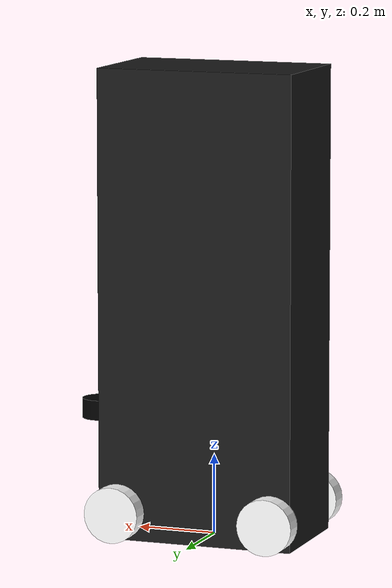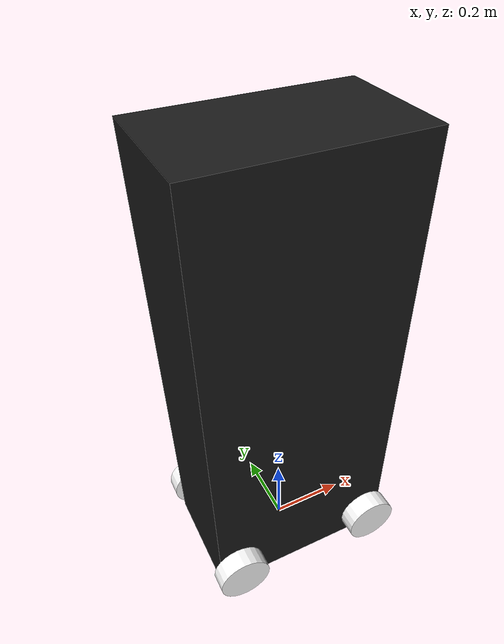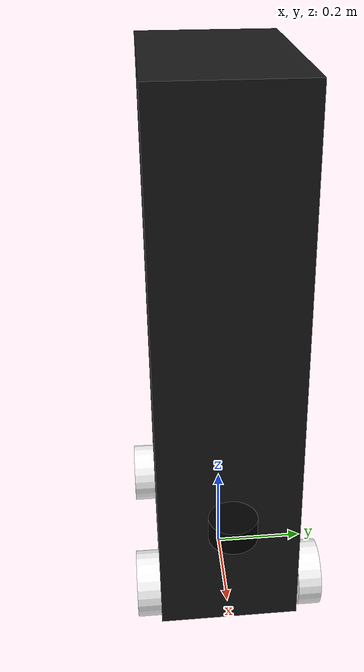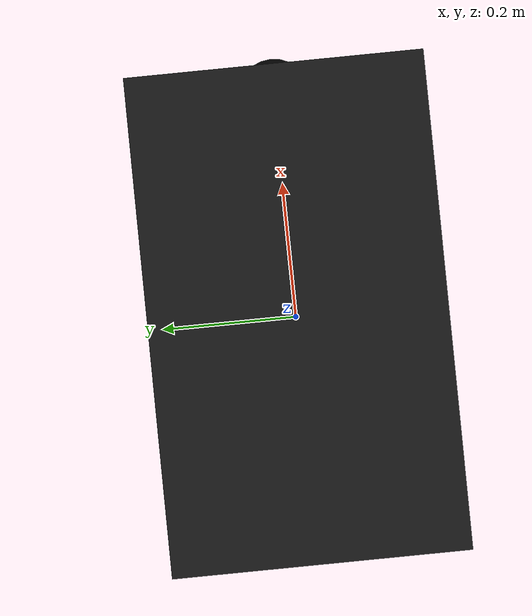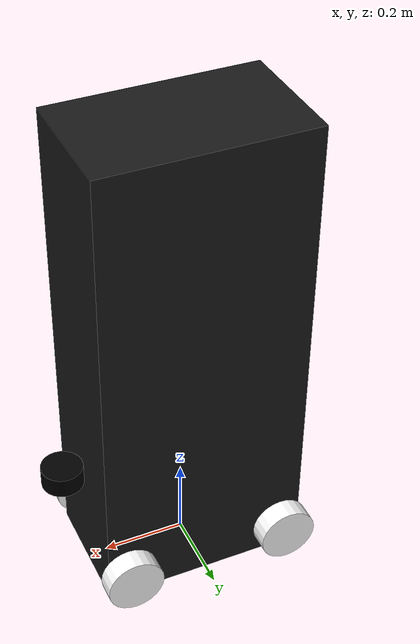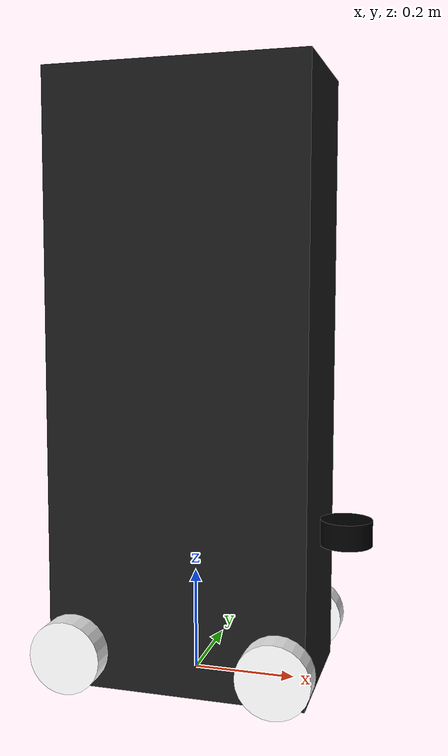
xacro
<?xml version="1.0"?>
<robot name="bill" xmlns:xacro="http://www.ros.org/wiki/xacro">

    <xacro:include filename="inertial_macros.xacro"/>

    <!-- Robot Variables -->
    <xacro:property name="chassis_length" value="0.5"/>
    <xacro:property name="chassis_width" value="0.3"/>
    <xacro:property name="chassis_height" value="1.17"/>
    <xacro:property name="chassis_mass" value="22.2"/>
    <xacro:property name="lidar_height" value="0.3"/>
    <xacro:property name="wheel_radius" value="0.07"/>
    <xacro:property name="wheel_thickness" value="0.05"/>
    <xacro:property name="wheel_mass" value="0.2"/>
    <xacro:property name="wheel_offset_x" value="0.2"/>
    <xacro:property name="wheel_offset_y" value="${chassis_width/2 + wheel_thickness/2}"/>
    <xacro:property name="wheel_offset_z" value="${- chassis_height/2 + wheel_radius}"/>

    <material name="white">
        <color rgba="1 1 1 1"/>
    </material>

    <material name="gray">
        <color rgba="0.1 0.1 0.1 1"/>
    </material>

    <material name="black">
        <color rgba="0 0 0 1"/>
    </material>

    <link name="base_link"/>

    <!-- Chassis -->
    <link name="chassis">
        <visual>
            <geometry>
                <box size="${chassis_length} ${chassis_width} ${chassis_height}"/>
            </geometry>
            <material name="gray"/>
        </visual>
        <collision>
            <geometry>
                <box size="${chassis_length} ${chassis_width} ${chassis_height}"/>
            </geometry>
        </collision>
        <xacro:inertial_box mass="${chassis_mass}" x="${chassis_length}" y="${chassis_width}" z="${chassis_height}">
            <origin xyz="0 0 -0.3" rpy="0 0 0"/>
        </xacro:inertial_box>
    </link>

    <!-- Wheels -->
    <xacro:macro name="wheel" params="name">
        <link name="${name}">
            <visual>
            <geometry>
                <cylinder radius="${wheel_radius}" length="${wheel_thickness}"/>
            </geometry>
            <!-- rotaciona o cilindro para que o eixo longo fique em Y (o eixo de rotação) -->
            <origin rpy="1.5708 0 0" xyz="0 0 0"/>
            <material name="white"/>
            </visual>
            <collision>
            <geometry>
                <cylinder radius="${wheel_radius}" length="${wheel_thickness}"/>
            </geometry>
            <origin rpy="1.5708 0 0" xyz="0 0 0"/>
            </collision>
            <xacro:inertial_cylinder mass="${wheel_mass}"
                                    length="${wheel_thickness}"
                                    radius="${wheel_radius}">
            <origin xyz="0 0 0" rpy="0 0 0"/>
            </xacro:inertial_cylinder>
        </link>
    </xacro:macro>

    <xacro:wheel name="wheel_front_left"/>
    <xacro:wheel name="wheel_front_right"/>
    <xacro:wheel name="wheel_rear_left"/>
    <xacro:wheel name="wheel_rear_right"/>

     <!-- Lidar's urdf-->
    <joint name="laser_joint" type="fixed">
        <parent link="chassis"/>
        <child link="laser_link"/>
        <origin xyz="0.3 0 ${- chassis_height/2 + lidar_height}" rpy="0 0 0"/>
    </joint>

    <link name="laser_link">
        <visual>
            <geometry>
                <cylinder radius="0.05" length="0.05"/>
            </geometry>
            <material name="black"/>
        </visual>
        <collision>
            <geometry>
                <cylinder radius="0.05" length="0.05"/>
            </geometry>
        </collision>
        <xacro:inertial_cylinder mass="0.1" length="0.05" radius="0.05">
            <origin xyz="0 0 0" rpy="0 0 0"/>
        </xacro:inertial_cylinder>
    </link>

    <!-- 2D Lidar Gazebo Sensor Plugin  -->
    <gazebo reference="laser_link">
        <sensor name="laser" type="ray">
            <always_on>true</always_on>
            <update_rate>10</update_rate>
            <visualize>true</visualize>
            <ray>
            <scan>
                <horizontal>
                <samples>140</samples>
                <min_angle>-0.8727</min_angle>
                <max_angle> 0.8727</max_angle>
                </horizontal>
            </scan>
            <range>
                <min>0.3</min>
                <max>12</max>
            </range>
            </ray>
            <plugin name="gazebo_ros_laser" filename="libgazebo_ros_ray_sensor.so">
            <ros>
                <namespace>/</namespace>
                <!-- remapeia o tópico interno “~/out” para “/scan” -->
                <remapping>~/out:=scan</remapping>
            </ros>
            <output_type>sensor_msgs/LaserScan</output_type>
            <frame_name>laser_link</frame_name>
            </plugin>
        </sensor>
    </gazebo>

    <!-- base_footprint fixo ao base_link -->
    <link name="base_footprint"/>

    <joint name="base_footprint_joint" type="fixed">
        <parent link="base_link"/>
        <child link="base_footprint"/>
        <origin xyz="0 0 0" rpy="0 0 0"/>
    </joint>

    <gazebo reference="chassis">
        <mu1 value="1.0"/>
        <mu2 value="0.2"/>
    </gazebo>

    <!-- Chassis fixado à base -->
    <joint name="base_to_chassis" type="fixed">
        <parent link="base_link"/>
        <child link="chassis"/>
        <origin xyz="0 0 ${chassis_height/2}" rpy="0 0 0"/>
    </joint>

    <!-- Juntas das rodas mecanum -->
    <joint name="wheel_front_left_joint" type="continuous">
        <parent link="chassis"/>
        <child link="wheel_front_left"/>
        <origin xyz="${wheel_offset_x} ${wheel_offset_y} ${wheel_offset_z}" rpy="0 0 0"/>
        <axis xyz="0 1 0"/>
    </joint>

    <joint name="wheel_front_right_joint" type="continuous">
        <parent link="chassis"/>
        <child link="wheel_front_right"/>
        <origin xyz="${wheel_offset_x} ${-wheel_offset_y} ${wheel_offset_z}" rpy="0 0 0"/>
        <axis xyz="0 1 0"/>
    </joint>

    <joint name="wheel_rear_left_joint" type="continuous">
        <parent link="chassis"/>
        <child link="wheel_rear_left"/>
        <origin xyz="${-wheel_offset_x} ${wheel_offset_y} ${wheel_offset_z}" rpy="0 0 0"/>
        <axis xyz="0 1 0"/>
    </joint>

    <joint name="wheel_rear_right_joint" type="continuous">
        <parent link="chassis"/>
        <child link="wheel_rear_right"/>
        <origin xyz="${-wheel_offset_x} ${-wheel_offset_y} ${wheel_offset_z}" rpy="0 0 0"/>
        <axis xyz="0 1 0"/>
    </joint>

    <!-- 1) Transmissions -->
    <xacro:macro name="simple_transmission" params="joint actuator">
        <transmission name="${joint}_trans">
        <type>transmission_interface/SimpleTransmission</type>
        <joint name="${joint}">
            <hardwareInterface>hardware_interface/VelocityJointInterface</hardwareInterface>
        </joint>
        <actuator name="${actuator}">
            <mechanicalReduction>1</mechanicalReduction>
            <hardwareInterface>hardware_interface/VelocityJointInterface</hardwareInterface>
        </actuator>
        </transmission>
    </xacro:macro>
    <xacro:simple_transmission joint="wheel_front_left_joint"  actuator="wheel_front_left_motor"/>
    <xacro:simple_transmission joint="wheel_front_right_joint" actuator="wheel_front_right_motor"/>
    <xacro:simple_transmission joint="wheel_rear_left_joint"   actuator="wheel_rear_left_motor"/>
    <xacro:simple_transmission joint="wheel_rear_right_joint"  actuator="wheel_rear_right_motor"/>

    <!-- 2) Plugin ros2_control para Gazebo -->
    <gazebo>
        <plugin name="gazebo_ros2_control" filename="libgazebo_ros2_control.so">
        <robotNamespace/>
        <controlPeriod>0.01</controlPeriod>
        <robotSimType>gazebo_ros2_control/DefaultRobotHWSim</robotSimType>
        </plugin>
    </gazebo>

    <gazebo>
      <plugin filename="libgazebo_ros_planar_move.so" name="mecanum_drive">
        <commandTopic>cmd_vel</commandTopic>
        <odometryTopic>odom</odometryTopic>
        <odometryFrame>odom</odometryFrame>
        <odometryRate>100.0</odometryRate>
        <robotBaseFrame>base_footprint</robotBaseFrame>
        <publishTF>True</publishTF>
      </plugin>
    </gazebo>

</robot>
